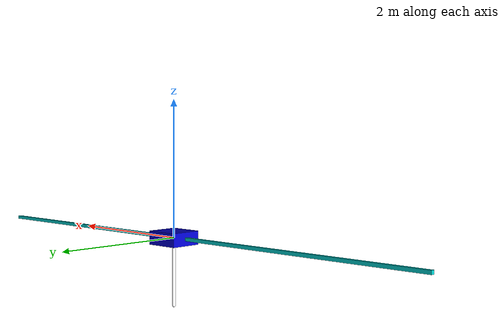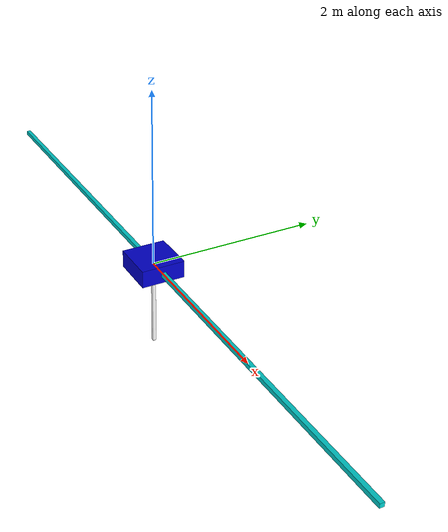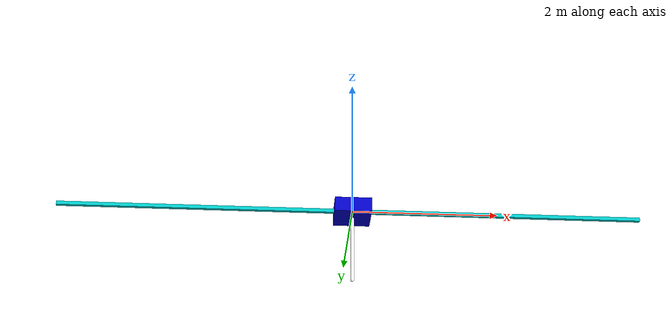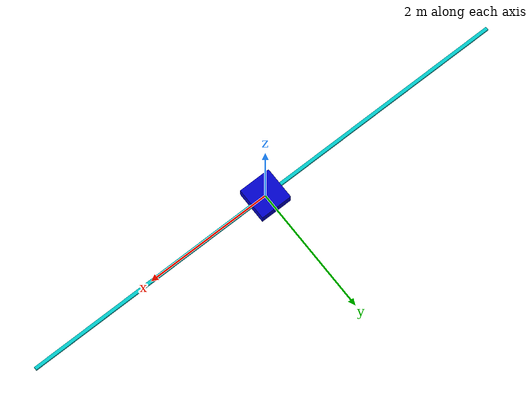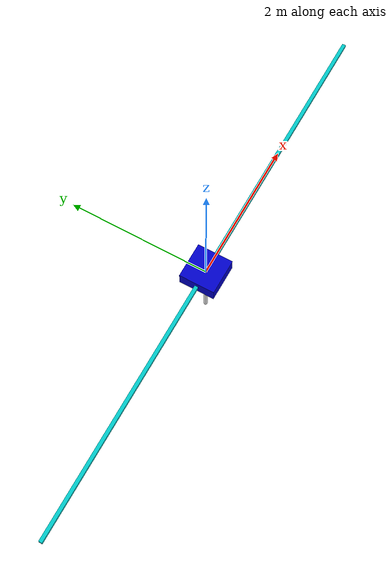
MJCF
<mujoco model="cartpole">
  <option gravity="0 0 -9.81" timestep="0.004166667" jacobian="sparse">
    <flag contact="disable" constraint="disable" eulerdamp="disable"/>
  </option>

  <compiler autolimits="true"/>

  <default>
    <joint damping="0"/>
    <geom contype="0" conaffinity="0"/>
  </default>

  <worldbody>
    <!-- Slide bar (visual only) -->
    <geom type="box" size="4 0.025 0.025" rgba="0 0.8 0.8 1"/>

    <!-- Cart -->
    <body name="cart" pos="0 0 0">
      <joint name="slider" type="slide" axis="1 0 0" range="-4 4"/>
      <geom type="box" size="0.25 0.25 0.1" mass="1" rgba="0 0 0.8 1"/>

      <!-- Pole (hanging down from cart) -->
      <body name="pole" pos="0 0 0">
        <joint name="hinge" type="hinge" axis="0 1 0"/>
        <geom type="capsule" fromto="0 0 0 0 0 -1" size="0.025" mass="10" rgba="1 1 1 1"/>
      </body>
    </body>
  </worldbody>

  <actuator>
    <motor name="slide_motor" joint="slider" gear="1"/>
  </actuator>

  <keyframe>
    <key name="hanging_down" qpos="0 3.14159265" qvel="0 0"/>
  </keyframe>
</mujoco>
